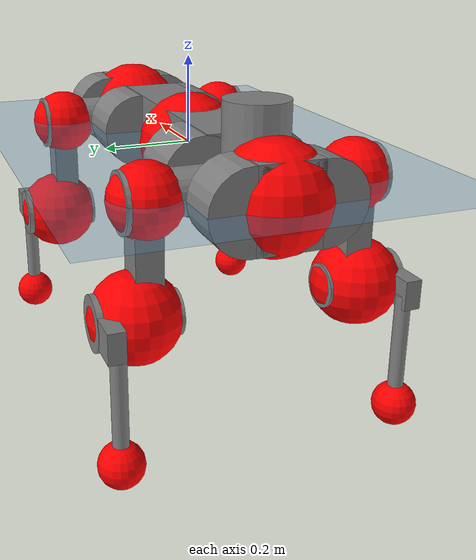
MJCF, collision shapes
<mujoco model="anymal_c">
  <compiler angle="radian" assetdir="assets" balanceinertia="true" inertiafromgeom="false"/>

  <option timestep="0.005" density="1.2" viscosity="2e-05"/>

  <size nkey="1"/>

  <visual>
    <quality shadowsize="8192"/>
    <map shadowclip="0.5"/>
  </visual>

  <default>
    <default class="/">
      <material specular="0" shininess="0.25"/>
      <geom contype="0" conaffinity="0" group="1" solref="-1000 -80"/>
      <site size="0.01 0.005 0.005" group="5"/>
      <general forcelimited="true" forcerange="-80 80" biastype="affine" gainprm="80" biasprm="0 -80 -2"/>
      <default class="anymal_c">
        <joint armature="0.01" damping="0.01" frictionloss="0.1"/>
        <default class="visual">
          <geom type="mesh" group="2"/>
          <default class="visual_zflip"/>
        </default>
        <default class="collision">
          <geom type="cylinder" group="3"/>
          <default class="foot">
            <geom size="0.03 0 0" type="sphere" condim="6" priority="1" friction="0.8 0.02 0.01" solimp="0.015 1 0.03"/>
          </default>
        </default>
      </default>
      <default class="reward_collision_sphere">
        <geom group="5" rgba="1 0 0 1"/>
      </default>
    </default>
  </default>

  <asset>
    <texture type="skybox" colorspace="auto" name="//unnamed_texture_0" builtin="gradient" rgb1="0.95 0.95 0.95" rgb2="0.95 0.95 0.95" width="100" height="600"/>
    <texture type="2d" colorspace="auto" name="texplane" builtin="checker" rgb1="0.345 0.575 0.748" rgb2="0.345 0.575 0.748" markrgb="1 1 1" width="512" height="512"/>
    <texture type="2d" colorspace="linear" name="base" file="base.png"/>
    <texture type="2d" colorspace="linear" name="top_shell" file="top_shell.png"/>
    <texture type="2d" colorspace="linear" name="bottom_shell" file="bottom_shell.png"/>
    <texture type="2d" colorspace="linear" name="remote" file="remote.png"/>
    <texture type="2d" colorspace="linear" name="hatch" file="hatch.png"/>
    <texture type="2d" colorspace="linear" name="handle" file="handle.png"/>
    <texture type="2d" colorspace="linear" name="face" file="face.png"/>
    <texture type="2d" colorspace="linear" name="battery" file="battery.png"/>
    <texture type="2d" colorspace="linear" name="lidar_cage" file="lidar_cage.png"/>
    <texture type="2d" colorspace="linear" name="depth_camera" file="depth_camera.png"/>
    <texture type="2d" colorspace="linear" name="wide_angle_camera" file="wide_angle_camera.png"/>
    <texture type="2d" colorspace="linear" name="lidar" file="lidar.png"/>
    <texture type="2d" colorspace="linear" name="drive" file="drive.png"/>
    <texture type="2d" colorspace="linear" name="hip_l" file="hip_l.png"/>
    <texture type="2d" colorspace="linear" name="shank_l" file="shank_l.png"/>
    <texture type="2d" colorspace="linear" name="foot" file="foot.png"/>
    <texture type="2d" colorspace="linear" name="thigh" file="thigh.png"/>
    <texture type="2d" colorspace="linear" name="shank_r" file="shank_r.png"/>
    <texture type="2d" colorspace="linear" name="hip_r" file="hip_r.png"/>
    <material name="MatPlane" class="/" texture="texplane" texuniform="true" texrepeat="2 2" specular="0.9" shininess="0.5"/>
    <material name="black_plastic" class="/" rgba="0.007 0.007 0.007 1"/>
    <material name="green" class="/" rgba="0.052 0.178 0.033 1"/>
    <material name="red" class="/" rgba="0.178 0.006 0.005 1"/>
    <material name="yellow" class="/" rgba="0.178 0.119 0.006 1"/>
    <material name="lwl" class="/" rgba="0.8 0.8 0.8 1"/>
    <material name="base" class="/" texture="base"/>
    <material name="top_shell" class="/" texture="top_shell"/>
    <material name="bottom_shell" class="/" texture="bottom_shell"/>
    <material name="hip_l" class="/" texture="hip_l"/>
    <material name="thigh" class="/" texture="thigh"/>
    <material name="shank_l" class="/" texture="shank_l"/>
    <material name="foot" class="/" texture="foot"/>
    <material name="hip_r" class="/" texture="hip_r"/>
    <material name="shank" class="/" texture="shank_r"/>
    <material name="hatch" class="/" texture="hatch"/>
    <material name="remote" class="/" texture="remote"/>
    <material name="handle" class="/" texture="handle"/>
    <material name="face" class="/" texture="face"/>
    <material name="depth_camera" class="/" texture="depth_camera"/>
    <material name="wide_angle_camera" class="/" texture="wide_angle_camera"/>
    <material name="battery" class="/" texture="battery"/>
    <material name="lidar_cage" class="/" texture="lidar_cage"/>
    <material name="lidar" class="/" texture="lidar"/>
    <material name="drive" class="/" texture="drive"/>
    <mesh name="base_0" class="/" file="base_0.obj"/>
    <mesh name="base_1" class="/" file="base_1.obj"/>
    <mesh name="base_2" class="/" file="base_2.obj"/>
    <mesh name="base_3" class="/" file="base_3.obj"/>
    <mesh name="base_4" class="/" file="base_4.obj"/>
    <mesh name="base_5" class="/" file="base_5.obj"/>
    <mesh name="top_shell" class="/" file="top_shell.obj"/>
    <mesh name="bottom_shell" class="/" file="bottom_shell.obj"/>
    <mesh name="remote" class="/" file="remote.obj"/>
    <mesh name="handle" class="/" file="handle.obj"/>
    <mesh name="face" class="/" file="face.obj"/>
    <mesh name="wide_angle_camera" class="/" file="wide_angle_camera.obj"/>
    <mesh name="depth_camera" class="/" file="depth_camera.obj"/>
    <mesh name="battery" class="/" file="battery.obj"/>
    <mesh name="lidar_cage" class="/" file="lidar_cage.obj"/>
    <mesh name="lidar" class="/" file="lidar.obj"/>
    <mesh name="drive" class="/" file="drive.obj"/>
    <mesh name="hip_l" class="/" file="hip_l.obj"/>
    <mesh name="thigh" class="/" file="thigh.obj"/>
    <mesh name="shank_l" class="/" file="shank_l.obj"/>
    <mesh name="foot" class="/" file="foot.obj"/>
    <mesh name="hip_r" class="/" file="hip_r.obj"/>
    <mesh name="hatch" class="/" file="hatch.obj"/>
    <mesh name="shank_r" class="/" file="shank_r.obj"/>
  </asset>

  <worldbody>
    <geom name="floor" class="/" size="100 100 0.125" type="plane" group="0" material="MatPlane"/>
    <light name="toplight_shadow" class="/" pos="0 0 5" dir="0.0990148 0.0990148 -0.990148" type="directional" ambient="0.04 0.04 0.04" diffuse="0.55 0.55 0.55" specular="0.12 0.12 0.12"/>
    <light name="toplight_fill" class="/" pos="0 0 5" dir="0.0990148 0.0990148 -0.990148" type="directional" castshadow="false" ambient="0.04 0.04 0.04" diffuse="0.3 0.3 0.3" specular="0.08 0.08 0.08"/>
    <body name="trunk" childclass="anymal_c" pos="-0.00194769 -0.0028256 -0.0013664" quat="0.999999 -0.000138846 -0.000283786 0.00133548">
      <inertial pos="0.000890624 0.00120174 0.0426653" quat="0.498735 0.504101 0.495331 0.50179" mass="17.9313" diaginertia="0.645215 0.903782 0.0981512"/>
      <joint name="//unnamed_joint_0" type="free" armature="0" damping="0" frictionloss="0"/>
      <geom name="//unnamed_geom_1" class="visual" material="green" mesh="base_0"/>
      <geom name="//unnamed_geom_2" class="visual" material="yellow" mesh="base_1"/>
      <geom name="//unnamed_geom_3" class="visual" material="red" mesh="base_2"/>
      <geom name="//unnamed_geom_4" class="visual" material="black_plastic" mesh="base_3"/>
      <geom name="//unnamed_geom_5" class="visual" material="lwl" mesh="base_4"/>
      <geom name="//unnamed_geom_6" class="visual" material="base" mesh="base_5"/>
      <geom name="trunk_1" class="collision" size="0.28304 0.0683201 0.0878401" type="box"/>
      <geom name="trunk_2" class="collision" size="0.0878401 0.0707601" pos="0.217912 0.075519 0" quat="0.707107 0 0.707107 0"/>
      <geom name="trunk_3" class="collision" size="0.0878401 0.0707601" pos="-0.217912 0.075519 0" quat="0.707107 0 0.707107 0"/>
      <geom name="trunk_4" class="collision" size="0.0878401 0.0707601" pos="0.217912 -0.075519 0" quat="0.707107 0 0.707107 0"/>
      <geom name="trunk_5" class="collision" size="0.0878401 0.0707601" pos="-0.217912 -0.075519 0" quat="0.707107 0 0.707107 0"/>
      <geom name="//unnamed_geom_12" class="visual" material="top_shell" mesh="top_shell"/>
      <geom name="//unnamed_geom_13" class="visual" material="bottom_shell" mesh="bottom_shell"/>
      <geom name="//unnamed_geom_14" class="visual" material="remote" mesh="remote"/>
      <geom name="//unnamed_geom_15" class="visual" material="handle" mesh="handle"/>
      <geom name="//unnamed_geom_16" class="visual" pos="0.415286 0 0" quat="1 0 0 0" material="face" mesh="face"/>
      <geom name="trunk_6" class="collision" size="0.0536801 0.0683201 0.0878401" pos="0.47039 0 0" type="box"/>
      <geom name="//unnamed_geom_18" class="collision" size="0.0878401 0.0536801" pos="0.47039 0.075519 0" quat="0.707107 0 0.707107 0"/>
      <geom name="//unnamed_geom_19" class="collision" size="0.0878401 0.0536801" pos="0.47039 -0.075519 0" quat="0.707107 0 0.707107 0"/>
      <geom name="//unnamed_geom_20" class="visual" pos="0.462519 0 -0.0235649" quat="0.965926 0 0.258819 0" material="depth_camera" mesh="depth_camera"/>
      <geom name="//unnamed_geom_21" class="visual" pos="0.513973 0 0.0126835" material="wide_angle_camera" mesh="wide_angle_camera"/>
      <geom name="//unnamed_geom_22" class="visual_zflip" pos="-0.415286 0 0" quat="0 0 0 1" material="face" mesh="face"/>
      <geom name="trunk_7" class="collision" size="0.0536801 0.0683201 0.0878401" pos="-0.47039 0 0" quat="0 0 0 1" type="box"/>
      <geom name="//unnamed_geom_24" class="collision" size="0.0878401 0.0536801" pos="-0.47039 -0.075519 0" quat="0 -0.707107 0 0.707107"/>
      <geom name="//unnamed_geom_25" class="collision" size="0.0878401 0.0536801" pos="-0.47039 0.075519 0" quat="0 -0.707107 0 0.707107"/>
      <geom name="//unnamed_geom_26" class="visual" pos="-0.462519 0 -0.0235649" quat="0 -0.258819 0 0.965926" material="depth_camera" mesh="depth_camera"/>
      <geom name="//unnamed_geom_27" class="visual_zflip" pos="-0.513973 0 0.0126835" quat="0 0 0 1" material="wide_angle_camera" mesh="wide_angle_camera"/>
      <geom name="//unnamed_geom_28" class="visual" material="battery" mesh="battery"/>
      <geom name="//unnamed_geom_29" class="visual" pos="0 0.0834917 0.0257882" quat="0.683013 -0.183013 0.183013 0.683013" material="depth_camera" mesh="depth_camera"/>
      <geom name="//unnamed_geom_30" class="visual" pos="0 -0.0834917 0.0257882" quat="0.683013 0.183013 0.183013 -0.683013" material="depth_camera" mesh="depth_camera"/>
      <geom name="//unnamed_geom_31" class="visual" pos="-0.36469 0 0.0622739" quat="1 0 0 0" material="lidar_cage" mesh="lidar_cage"/>
      <geom name="trunk_8" class="collision" size="0.0683201 0.0585601" pos="-0.36469 0 0.11311"/>
      <geom name="//unnamed_geom_33" class="visual" pos="-0.36469 3.02305e-05 0.120481" quat="0.707107 0 0 -0.707107" material="lidar" mesh="lidar"/>
      <geom name="//unnamed_geom_34" class="visual" pos="0.300469 0.112117 3.99476e-09" quat="0.258819 0.965926 0 0" material="drive" mesh="drive"/>
      <geom name="//unnamed_geom_35" class="visual" pos="0.300469 -0.112117 -3.99476e-09" quat="0.258819 -0.965926 0 0" material="drive" mesh="drive"/>
      <geom name="//unnamed_geom_36" class="visual" pos="-0.300469 0.112117 -3.99476e-09" quat="0 0 0.965926 -0.258819" material="drive" mesh="drive"/>
      <geom name="//unnamed_geom_37" class="visual" pos="-0.300469 -0.112117 3.99476e-09" quat="0 0 -0.965926 -0.258819" material="drive" mesh="drive"/>
      <geom name="//unnamed_geom_38" class="visual" pos="0.11622 0 0.0618503" quat="1 0 0 0" material="hatch" mesh="hatch"/>
      <geom name="//unnamed_geom_39" class="reward_collision_sphere" size="0.11712"/>
      <geom name="//unnamed_geom_40" class="reward_collision_sphere" size="0.11712" pos="0.450853 0 0"/>
      <geom name="//unnamed_geom_41" class="reward_collision_sphere" size="0.11712" pos="-0.450853 0 0"/>
      <site name="imu" pos="0.249425 0.0145771 0.0382632" size="0.00976001"/>
      <camera name="track" pos="0 -2.15769 0" quat="0.707107 0.707107 0 0" mode="trackcom"/>
      <camera name="ego_camera" pos="0.450853 0 -0.0338906" quat="-0.5 -0.5 0.5 0.5"/>
      <body name="LF_HIP" pos="0.298812 0.110158 0.00212172" quat="0.25898 0.965882 -0.000788587 -0.000188187">
        <inertial pos="0.055261 -0.0184149 -0.00918139" quat="-0.129655 0.709145 -0.137447 0.679273" mass="2.70176" diaginertia="0.00616903 0.00721182 0.00152671"/>
        <joint name="LF_HAA" pos="0 0 0" axis="1 5.61458e-05 -0.00077355" range="-0.704883 0.438801" armature="0.0111473" damping="0" frictionloss="0.105444"/>
        <geom name="//unnamed_geom_42" class="visual" pos="0 0.000234994 -3.85976e-05" quat="0.258819 -0.965926 0 0" material="hip_l" mesh="hip_l"/>
        <geom name="//unnamed_geom_43" class="visual" pos="0.0600136 -0.0736501 -0.040809" quat="0.183013 -0.683013 0.683013 0.183013" material="drive" mesh="drive"/>
        <geom name="//unnamed_geom_44" class="collision" size="0.0488001 0.0683201" pos="0.0600136 -0.0129028 -0.00585036" quat="-0.353553 -0.612372 0.612372 -0.353553"/>
        <body name="LF_THIGH" pos="0.0601421 -0.0797953 -0.0346048" quat="0.18312 -0.683243 0.682763 0.182978">
          <inertial pos="0.0329236 -0.000242723 -0.205684" quat="0.993464 -0.0030555 -0.0773168 0.0839171" mass="2.87196" diaginertia="0.0310875 0.0440049 0.00180736"/>
          <joint name="LF_HFE" pos="0 0 0" axis="0.999947 0.00622437 0.00820734" stiffness="0.0049713" range="-3.19743 3.19476" armature="0.0111895" damping="0" frictionloss="0.108099"/>
          <geom name="//unnamed_geom_45" class="visual" pos="-0.00153095 -2.41241e-06 0" quat="0.707107 0 0 -0.707107" material="thigh" mesh="thigh"/>
          <geom name="//unnamed_geom_46" class="collision" size="0.0634401 0.0390401" pos="0.0400759 0 0" quat="0.5 0.5 -0.5 -0.5"/>
          <geom name="//unnamed_geom_47" class="collision" size="0.0366001 0.02928 0.137923" pos="0.0300569 0 -0.11973" quat="0.707107 0 0 -0.707107" type="box"/>
          <geom name="//unnamed_geom_48" class="visual" pos="0.10049 0 -0.24147" quat="1 0 0 0" material="drive" mesh="drive"/>
          <geom name="//unnamed_geom_49" class="collision" size="0.0488001 0.0683201" pos="0.0303575 0 -0.24147" quat="0.707107 0 0.707107 0"/>
          <geom name="//unnamed_geom_50" class="reward_collision_sphere" size="0.0780801" pos="0.0250474 0 0"/>
          <body name="LF_SHANK" pos="0.101312 -0.0010084 -0.241988" quat="0.999999 -0.000483497 -0.00114441 0.000458715">
            <inertial pos="0.00803822 -0.063741 -0.0712144" quat="0.992272 -0.118217 -0.00117166 -0.0376667" mass="0.548923" diaginertia="0.0101627 0.0138713 0.000471606"/>
            <joint name="LF_KFE" pos="0 0 0" axis="1 -0.000292045 0.000633391" range="-3.12139 3.08652" armature="0.00848279" damping="0.010092" frictionloss="0.10256"/>
            <geom name="//unnamed_geom_51" class="visual" pos="-0.000499208 -0.0026618 0" quat="0.707107 0 0 -0.707107" material="shank_l" mesh="shank_l"/>
            <geom name="LF_kfe_act" class="collision" size="0.0585601 0.01952" pos="0.0200379 0 0" quat="0.5 0.5 -0.5 -0.5"/>
            <geom name="//unnamed_geom_53" class="collision" size="0.0561191 0.03294 0.018544" pos="0.0200379 -0.0620324 0" quat="0.5 0.5 -0.5 -0.5" type="box"/>
            <geom name="//unnamed_geom_54" class="visual" pos="0.0130749 -0.0957421 -0.28635" quat="0.382683 0 0 -0.92388" material="foot" mesh="foot"/>
            <geom name="LF_calf" class="collision" size="0.01708 0.137862" pos="0.0130747 -0.0948843 -0.143175" quat="0.707107 0 0 -0.707107"/>
            <geom name="LF_foot" class="foot" size="0.033569" pos="0.0130747 -0.0948843 -0.267287" quat="0.707107 0 0 -0.707107"/>
            <geom name="//unnamed_geom_57" class="reward_collision_sphere" size="0.0976001" pos="-0.0500948 0 0"/>
            <geom name="//unnamed_geom_58" class="reward_collision_sphere" size="0.0488001" pos="0.0130747 -0.0948843 -0.267287"/>
            <site name="LF_foot" class="foot" pos="0.0130747 -0.0948843 -0.267287" quat="0.707107 0 0 -0.707107" size="0.00976001"/>
          </body>
        </body>
      </body>
      <body name="RF_HIP" pos="0.300556 -0.11017 0.000554095" quat="0.259308 -0.965795 -0.000127551 -0.000532189">
        <inertial pos="0.0596443 0.0174343 -0.00716425" quat="0.133191 0.679378 0.127705 0.71021" mass="2.70672" diaginertia="0.00619551 0.007483 0.0014368"/>
        <joint name="RF_HAA" pos="0 0 0" axis="0.999997 0.000296142 0.00228038" range="-0.443548 0.727871" armature="0.00897119" damping="0.010928" frictionloss="0.106682"/>
        <geom name="//unnamed_geom_59" class="visual" pos="0 -0.000234992 -3.85975e-05" quat="0.258819 0.965926 0 0" material="hip_r" mesh="hip_r"/>
        <geom name="//unnamed_geom_60" class="visual" pos="0.0600136 0.0736501 -0.040809" quat="0.183013 0.683013 0.683013 -0.183013" material="drive" mesh="drive"/>
        <geom name="//unnamed_geom_61" class="collision" size="0.0488001 0.0683201" pos="0.0600136 0.0129028 -0.00585036" quat="-0.353553 0.612372 0.612372 0.353553"/>
        <body name="RF_THIGH" pos="0.058976 0.0778774 -0.0333466" quat="0.183205 0.683729 0.682276 -0.182893">
          <inertial pos="0.0281214 -0.00173896 -0.208081" quat="0.992829 -0.0101634 -0.0803451 0.0879273" mass="2.76421" diaginertia="0.0303146 0.042144 0.00173938"/>
          <joint name="RF_HFE" pos="0 0 0" axis="0.999992 -0.00347403 -0.00201434" stiffness="0.00673635" range="-3.15332 3.11692" armature="0.00971392" damping="0.0127426" frictionloss="0.1057"/>
          <geom name="//unnamed_geom_62" class="visual" pos="-0.00153095 -2.41241e-06 0" quat="0.707107 0 0 -0.707107" material="thigh" mesh="thigh"/>
          <geom name="//unnamed_geom_63" class="collision" size="0.0634401 0.0390401" pos="0.0400759 0 0" quat="0.5 0.5 0.5 0.5"/>
          <geom name="//unnamed_geom_64" class="collision" size="0.0366001 0.02928 0.137923" pos="0.0300569 0 -0.11973" quat="0.707107 0 0 0.707107" type="box"/>
          <geom name="//unnamed_geom_65" class="visual" pos="0.10049 0 -0.24147" quat="1 0 0 0" material="drive" mesh="drive"/>
          <geom name="//unnamed_geom_66" class="collision" size="0.0488001 0.0683201" pos="0.0303575 0 -0.24147" quat="0.707107 0 0.707107 0"/>
          <geom name="//unnamed_geom_67" class="reward_collision_sphere" size="0.0780801" pos="0.0250474 0 0"/>
          <body name="RF_SHANK" pos="0.103101 -0.00047472 -0.240857" quat="1 5.87107e-05 -0.000208043 -4.47354e-05">
            <inertial pos="0.00806988 0.0664267 -0.0683546" quat="0.993318 0.113195 -0.00377355 0.0221636" mass="0.566436" diaginertia="0.0109548 0.013464 0.000502786"/>
            <joint name="RF_KFE" pos="0 0 0" axis="0.999914 0.00169667 -0.0130036" range="-3.12626 3.15743" armature="0.00941618" damping="0.020716" frictionloss="0.097389"/>
            <geom name="//unnamed_geom_68" class="visual" pos="-0.000499205 0.0026618 0" quat="0.707107 0 0 0.707107" material="shank" mesh="shank_r"/>
            <geom name="RF_kfe_act" class="collision" size="0.0585601 0.01952" pos="0.0200379 0 0" quat="0.5 0.5 0.5 0.5"/>
            <geom name="//unnamed_geom_70" class="collision" size="0.0561191 0.03294 0.018544" pos="0.0200379 0.0620324 0" quat="0.5 0.5 0.5 0.5" type="box"/>
            <geom name="//unnamed_geom_71" class="visual" pos="0.0130746 0.0957421 -0.28635" quat="0.382683 0 0 0.92388" material="foot" mesh="foot"/>
            <geom name="RF_calf" class="collision" size="0.01708 0.137862" pos="0.0130747 0.0948843 -0.143175" quat="0.707107 0 0 0.707107"/>
            <geom name="RF_foot" class="foot" size="0.027524" pos="0.0130747 0.0948843 -0.267287" quat="0.707107 0 0 0.707107"/>
            <geom name="//unnamed_geom_74" class="reward_collision_sphere" size="0.0976001" pos="-0.0500948 0 0"/>
            <geom name="//unnamed_geom_75" class="reward_collision_sphere" size="0.0488001" pos="0.0130747 0.0948843 -0.267287"/>
            <site name="RF_foot" class="foot" pos="0.0130747 0.0948843 -0.267287" quat="0.707107 0 0 0.707107" size="0.00976001"/>
          </body>
        </body>
      </body>
      <body name="LH_HIP" pos="-0.299117 0.111932 0.0027272" quat="-0.000251024 -0.000418234 0.965907 -0.258887">
        <inertial pos="0.0587991 0.0166461 -0.00809893" quat="0.135763 0.678912 0.128098 0.710097" mass="2.5589" diaginertia="0.00587566 0.00740147 0.00142762"/>
        <joint name="LH_HAA" pos="0 0 0" axis="0.999989 0.00325103 -0.00336085" stiffness="0.00668834" range="-0.48083 0.701682" armature="0.0097961" damping="0.00859595" frictionloss="0.104009"/>
        <geom name="//unnamed_geom_76" class="visual" pos="0 -0.000234992 -3.85975e-05" quat="-0.258819 -0.965926 0 0" material="hip_r" mesh="hip_r"/>
        <geom name="//unnamed_geom_77" class="visual" pos="0.0600136 0.0736501 -0.040809" quat="0.183013 0.683013 0.683013 -0.183013" material="drive" mesh="drive"/>
        <geom name="//unnamed_geom_78" class="collision" size="0.0488001 0.0683201" pos="0.0600136 0.0129028 -0.00585036" quat="-0.353553 0.612372 0.612372 0.353553"/>
        <body name="LH_THIGH" pos="0.0573951 0.0803759 -0.0328091" quat="0.182779 0.683682 0.682362 -0.183173">
          <inertial pos="0.0305938 0.00065544 -0.207168" quat="0.991422 -0.0120042 -0.0858862 0.0977844" mass="2.76422" diaginertia="0.0307103 0.0422314 0.00184873"/>
          <joint name="LH_HFE" pos="0 0 0" axis="0.999976 -0.0068858 0.000132124" stiffness="0.00114465" range="-3.12283 3.12973" armature="0.00853251" damping="0" frictionloss="0.0927856"/>
          <geom name="//unnamed_geom_79" class="visual" pos="-0.00153095 -2.41241e-06 0" quat="0.707107 0 0 -0.707107" material="thigh" mesh="thigh"/>
          <geom name="//unnamed_geom_80" class="collision" size="0.0634401 0.0390401" pos="0.0400759 0 0" quat="0.5 0.5 -0.5 -0.5"/>
          <geom name="//unnamed_geom_81" class="collision" size="0.0366001 0.02928 0.137923" pos="0.0300569 0 -0.11973" quat="0.707107 0 0 -0.707107" type="box"/>
          <geom name="//unnamed_geom_82" class="visual" pos="0.10049 0 -0.24147" quat="1 0 0 0" material="drive" mesh="drive"/>
          <geom name="//unnamed_geom_83" class="collision" size="0.0488001 0.0683201" pos="0.0303575 0 -0.24147" quat="0.707107 0 0.707107 0"/>
          <geom name="//unnamed_geom_84" class="reward_collision_sphere" size="0.0780801" pos="0.0250474 0 0"/>
          <body name="LH_SHANK" pos="0.101393 -0.00131361 -0.240174" quat="1 -7.19343e-05 6.312e-06 -4.23347e-05">
            <inertial pos="0.00563259 0.06612 -0.0657693" quat="0.992973 0.115776 -0.000101755 0.0245096" mass="0.54815" diaginertia="0.0102823 0.013557 0.000495561"/>
            <joint name="LH_KFE" pos="0 0 0" axis="0.999999 -5.90307e-05 0.00151507" stiffness="0.00297083" range="-3.1474 3.14267" armature="0.00901367" damping="0" frictionloss="0.0971263"/>
            <geom name="//unnamed_geom_85" class="visual" pos="-0.000499205 0.0026618 0" quat="-0.707107 0 0 -0.707107" material="shank" mesh="shank_r"/>
            <geom name="LH_kfe_act" class="collision" size="0.0585601 0.01952" pos="0.0200379 0 0" quat="0.5 0.5 -0.5 -0.5"/>
            <geom name="//unnamed_geom_87" class="collision" size="0.0561191 0.03294 0.018544" pos="0.0200379 0.0620324 0" quat="0.5 0.5 -0.5 -0.5" type="box"/>
            <geom name="//unnamed_geom_88" class="visual" pos="0.0130746 0.0957421 -0.28635" quat="-0.382683 0 0 -0.92388" material="foot" mesh="foot"/>
            <geom name="LH_calf" class="collision" size="0.01708 0.137862" pos="0.0130747 0.0948843 -0.143175" quat="0.707107 0 0 -0.707107"/>
            <geom name="LH_foot" class="foot" size="0.0331519" pos="0.0130747 0.0948843 -0.267287" quat="0.707107 0 0 -0.707107"/>
            <geom name="//unnamed_geom_91" class="reward_collision_sphere" size="0.0976001" pos="-0.0500948 0 0"/>
            <geom name="//unnamed_geom_92" class="reward_collision_sphere" size="0.0488001" pos="0.0130747 0.0948843 -0.267287"/>
            <site name="LH_foot" class="foot" pos="0.0130747 0.0948843 -0.267287" quat="0.707107 0 0 -0.707107" size="0.00976001"/>
          </body>
        </body>
      </body>
      <body name="RH_HIP" pos="-0.299574 -0.113887 0.00284856" quat="0.00082354 -0.000429158 -0.966245 -0.257622">
        <inertial pos="0.05671 -0.0138095 -0.00731445" quat="-0.128608 0.716381 -0.140466 0.671213" mass="2.58178" diaginertia="0.00607814 0.00740407 0.00140558"/>
        <joint name="RH_HAA" pos="0 0 0" axis="0.999988 -0.000290873 -0.00498696" stiffness="0.00677925" range="-0.741275 0.503984" armature="0.0108527" damping="0.0153254" frictionloss="0.0851715"/>
        <geom name="//unnamed_geom_93" class="visual" pos="0 0.000234994 -3.85976e-05" quat="-0.258819 0.965926 0 0" material="hip_l" mesh="hip_l"/>
        <geom name="//unnamed_geom_94" class="visual" pos="0.0600136 -0.0736501 -0.040809" quat="-0.183013 0.683013 -0.683013 -0.183013" material="drive" mesh="drive"/>
        <geom name="//unnamed_geom_95" class="collision" size="0.0488001 0.0683201" pos="0.0600136 -0.0129028 -0.00585036" quat="0.353553 0.612372 -0.612372 0.353553"/>
        <body name="RH_THIGH" pos="0.0585977 -0.0777676 -0.038024" quat="-0.183142 0.68308 -0.683134 -0.18218">
          <inertial pos="0.0313372 -0.00230466 -0.208654" quat="0.993188 -0.00645593 -0.0795017 0.0849471" mass="2.7391" diaginertia="0.0294818 0.042772 0.00174659"/>
          <joint name="RH_HFE" pos="0 0 0" axis="0.999998 -0.00135476 0.00108616" range="-3.18708 3.19745" armature="0.0109006" damping="0.0107893" frictionloss="0.0971711"/>
          <geom name="//unnamed_geom_96" class="visual" pos="-0.00153095 -2.41241e-06 0" quat="0.707107 0 0 -0.707107" material="thigh" mesh="thigh"/>
          <geom name="//unnamed_geom_97" class="collision" size="0.0634401 0.0390401" pos="0.0400759 0 0" quat="0.5 0.5 0.5 0.5"/>
          <geom name="//unnamed_geom_98" class="collision" size="0.0366001 0.02928 0.137923" pos="0.0300569 0 -0.11973" quat="0.707107 0 0 0.707107" type="box"/>
          <geom name="//unnamed_geom_99" class="visual" pos="0.10049 0 -0.24147" quat="1 0 0 0" material="drive" mesh="drive"/>
          <geom name="//unnamed_geom_100" class="collision" size="0.0488001 0.0683201" pos="0.0303575 0 -0.24147" quat="0.707107 0 0.707107 0"/>
          <geom name="//unnamed_geom_101" class="reward_collision_sphere" size="0.0780801" pos="0.0250474 0 0"/>
          <body name="RH_SHANK" pos="0.0991188 0.00331086 -0.242184" quat="1 0.000148863 -0.000117707 -0.000173483">
            <inertial pos="0.00683977 -0.0657626 -0.0659907" quat="0.99243 -0.120641 0.00303481 -0.0227806" mass="0.545063" diaginertia="0.010335 0.012732 0.0004944"/>
            <joint name="RH_KFE" pos="0 0 0" axis="1 -0.000627298 -0.000554766" range="-3.07209 3.16143" armature="0.00824956" damping="0.00321435" frictionloss="0.0987434"/>
            <geom name="//unnamed_geom_102" class="visual" pos="-0.000499208 -0.0026618 0" quat="0.707107 0 0 -0.707107" material="shank_l" mesh="shank_l"/>
            <geom name="RH_kfe_act" class="collision" size="0.0585601 0.01952" pos="0.0200379 0 0" quat="0.5 0.5 0.5 0.5"/>
            <geom name="//unnamed_geom_104" class="collision" size="0.0561191 0.03294 0.018544" pos="0.0200379 -0.0620324 0" quat="0.5 0.5 0.5 0.5" type="box"/>
            <geom name="//unnamed_geom_105" class="visual" pos="0.0130749 -0.0957421 -0.28635" quat="0.382683 0 0 -0.92388" material="foot" mesh="foot"/>
            <geom name="RH_calf" class="collision" size="0.01708 0.137862" pos="0.0130747 -0.0948843 -0.143175" quat="0.707107 0 0 0.707107"/>
            <geom name="RH_foot" class="foot" size="0.0269234" pos="0.0130747 -0.0948843 -0.267287" quat="0.707107 0 0 0.707107"/>
            <geom name="//unnamed_geom_108" class="reward_collision_sphere" size="0.0976001" pos="-0.0500948 0 0"/>
            <geom name="//unnamed_geom_109" class="reward_collision_sphere" size="0.0488001" pos="0.0130747 -0.0948843 -0.267287"/>
            <site name="RH_foot" class="foot" pos="0.0130747 -0.0948843 -0.267287" quat="0.707107 0 0 0.707107" size="0.00976001"/>
          </body>
        </body>
      </body>
    </body>
  </worldbody>

  <contact>
    <pair class="/" geom1="floor" geom2="LF_foot" name="//unnamed_contact_0"/>
    <pair class="/" geom1="floor" geom2="RF_foot" name="//unnamed_contact_1"/>
    <pair class="/" geom1="floor" geom2="LH_foot" name="//unnamed_contact_2"/>
    <pair class="/" geom1="floor" geom2="RH_foot" name="//unnamed_contact_3"/>
  </contact>

  <actuator>
    <general name="LF_HAA" class="/" joint="LF_HAA" forcerange="-78.2471 78.2471" gainprm="78.6231" biasprm="0 -78.6231 -1.94283"/>
    <general name="LF_HFE" class="/" joint="LF_HFE" forcerange="-71.8438 71.8438" gainprm="78.6231" biasprm="0 -78.6231 -1.94283"/>
    <general name="LF_KFE" class="/" joint="LF_KFE" forcerange="-77.2322 77.2322" gainprm="78.6231" biasprm="0 -78.6231 -1.94283"/>
    <general name="RF_HAA" class="/" joint="RF_HAA" forcerange="-82.5704 82.5704" gainprm="78.6231" biasprm="0 -78.6231 -1.94283"/>
    <general name="RF_HFE" class="/" joint="RF_HFE" forcerange="-80.7726 80.7726" gainprm="78.6231" biasprm="0 -78.6231 -1.94283"/>
    <general name="RF_KFE" class="/" joint="RF_KFE" forcerange="-69.9005 69.9005" gainprm="78.6231" biasprm="0 -78.6231 -1.94283"/>
    <general name="LH_HAA" class="/" joint="LH_HAA" forcerange="-80.6919 80.6919" gainprm="78.6231" biasprm="0 -78.6231 -1.94283"/>
    <general name="LH_HFE" class="/" joint="LH_HFE" forcerange="-80.8256 80.8256" gainprm="78.6231" biasprm="0 -78.6231 -1.94283"/>
    <general name="LH_KFE" class="/" joint="LH_KFE" forcerange="-75.7321 75.7321" gainprm="78.6231" biasprm="0 -78.6231 -1.94283"/>
    <general name="RH_HAA" class="/" joint="RH_HAA" forcerange="-75.2942 75.2942" gainprm="78.6231" biasprm="0 -78.6231 -1.94283"/>
    <general name="RH_HFE" class="/" joint="RH_HFE" forcerange="-77.0902 77.0902" gainprm="78.6231" biasprm="0 -78.6231 -1.94283"/>
    <general name="RH_KFE" class="/" joint="RH_KFE" forcerange="-84.9745 84.9745" gainprm="78.6231" biasprm="0 -78.6231 -1.94283"/>
  </actuator>

  <sensor>
    <gyro site="imu" name="imu_angular_velocity"/>
    <velocimeter site="imu" name="imu_linear_velocity"/>
    <framelinvel objtype="site" objname="LF_foot" name="LF_foot_global_linear_velocity"/>
    <framelinvel objtype="site" objname="RF_foot" name="RF_foot_global_linear_velocity"/>
    <framelinvel objtype="site" objname="LH_foot" name="LH_foot_global_linear_velocity"/>
    <framelinvel objtype="site" objname="RH_foot" name="RH_foot_global_linear_velocity"/>
  </sensor>

  <keyframe>
    <key name="home" qpos="0 0 0.55 1 0 0 0 0 0.4 -0.8 0 -0.4 0.8 0 -0.4 0.8 0 0.4 -0.8"/>
  </keyframe>
</mujoco>
